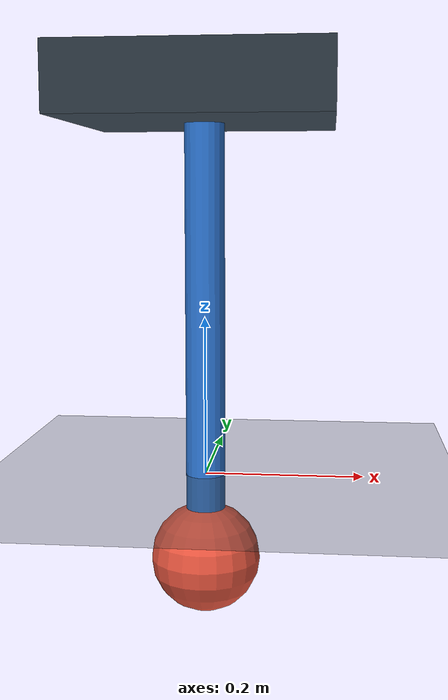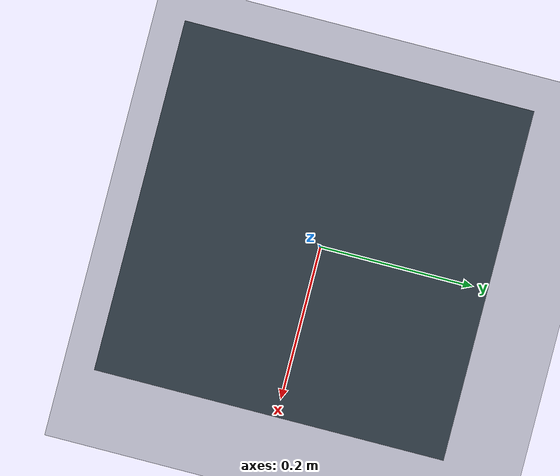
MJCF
<?xml version="1.0" ?>
<mujoco model="motor_pendulum_demo">
  <compiler angle="radian" autolimits="true"/>
  <option timestep="0.002" gravity="0 0 -9.81" solver="Newton" iterations="80"/>
  <worldbody>
    <light pos="0 -3 4" dir="0 1 -1"/>
    <geom name="floor" type="plane" size="10 10 .1" rgba=".22 .24 .25 1" friction="1.0 0.01 0.001"/>
    <geom type="box" name="demo_base" pos="0 0 0.48" size="0.16 0.16 0.04" rgba="0.18 0.23 0.27 1" density="0"/>
    <body name="pendulum" pos="0 0 0.48">
      <joint name="hinge" type="hinge" axis="0 1 0" range="-3.14 3.14" damping="0.04"/>
      <geom type="capsule" name="rod" size="0.025" fromto="0 0 0 0 0 -0.56" rgba="0.18 0.47 0.84 1" density="450"/>
      <geom type="sphere" name="tip_mass" pos="0 0 -0.59" size="0.07" rgba="0.92 0.34 0.25 1" density="900"/>
    </body>
  </worldbody>
  <actuator>
    <motor name="hinge_motor" joint="hinge" gear="1" ctrlrange="-3 3" ctrllimited="true"/>
  </actuator>
</mujoco>
